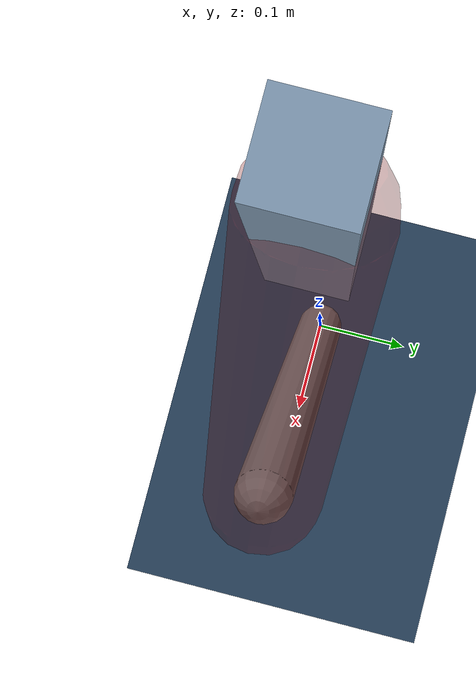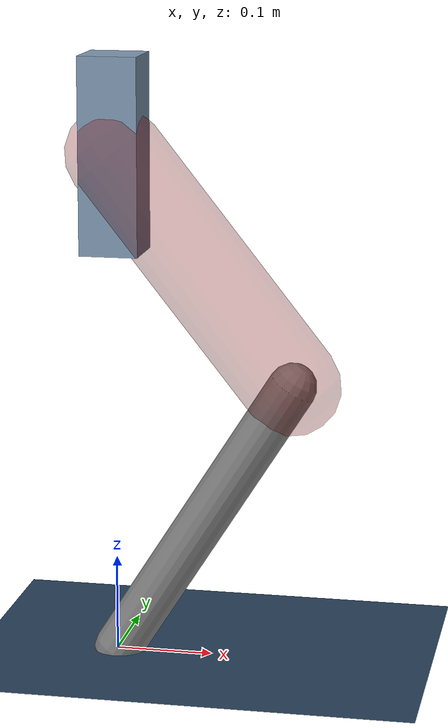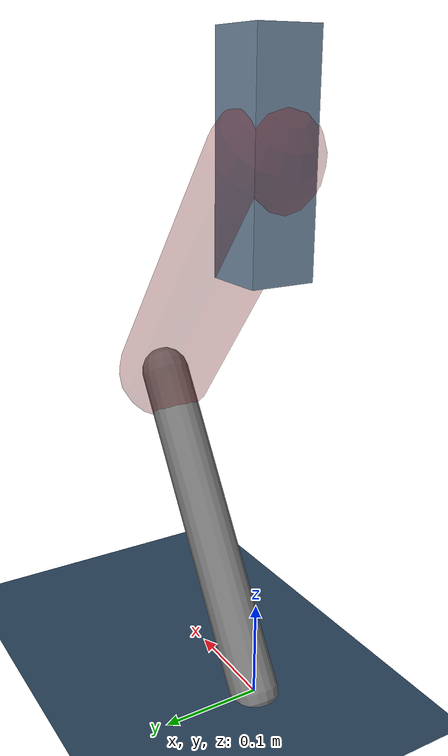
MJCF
<mujoco model="Hopper2D">
	<compiler inertiafromgeom="true" angle="radian" />
	<option timestep="0.001" integrator="implicit" cone="elliptic" solver="Newton" tolerance="1e-10" />

	<default>
		<geom contype="1" conaffinity="1" condim="3" friction="2 0.005 0.0001" solref="0.005 1" />
		<joint limited="true" damping="0.1" />
	</default>

	<asset>
		<texture name="skybox" type="skybox" builtin="gradient" rgb1=".4 .6 .8" rgb2="0 0 0" width="800" height="800" />
		<texture name="grid" type="2d" builtin="checker" rgb1=".1 .2 .3" rgb2=".2 .3 .4" width="300" height="300" mark="edge" markrgb=".2 .3 .4" />
		<material name="ground" texture="grid" texrepeat="1 1" texuniform="true" reflectance="0.1" />
		<material name="leg" rgba="0.5 0.6 0.7 1" />
	</asset>

	<worldbody>

		<geom name="floor" type="plane" size="5 5 0.25" material="ground" />

		<light directional="false" diffuse="0.8 0.8 0.8" specular="0.3 0.3 0.3" pos="0 0 2" dir="0 0 -1" />
		<light mode="targetbodycom" target="base" directional="false" diffuse="0.8 0.8 0.8" specular="0.3 0.3 0.3" pos="0 0 2" dir="0 0 -1" />

		<camera name="fixed" pos="0 -2 1" xyaxes="1 0 0 0 0 1" />
		<camera name="tracking" mode="trackcom" pos="0 -3 1" />

		<body name="root" pos="0 0 0.5236591519672246">
			<joint name="slide_x" type="slide" axis="1 0 0" range="-100 100" />
			<joint name="slide_z" type="slide" axis="0 0 1" range="0 10" />

			<body name="base" pos="0 0 0">
				<geom name="torso" type="box" size="0.03 0.03 0.1" mass="1.8840000000000001" material="leg" />

				<body name="link1" pos="0 0 0" euler="0 0.9016500838704115 0">
					<joint type="hinge" axis="0 -1 0" pos="0 0 0" name="hinge1" limited="true" range="-3.14 3.14" stiffness="0" damping="0.1" />
					<geom name="thigh" type="capsule" fromto="0 0 0 0.29584279898109334 0 0" size="0.05" rgba="0.5 0 0 0.3" mass="0.9774912773508427" />

					<body name="link2" pos="0.29584279898109334 0 0" euler="0 1.230839706393991 0">
						<joint type="hinge" axis="0 -1 0" pos="0 0 0" name="hinge2" limited="true" range="-3.14 3.14" stiffness="0" damping="0.1" />
						<geom name="shank" type="capsule" fromto="0 0 0 0.34455354651422765 0 0" size="0.025" mass="0.5195428372113822" />

					</body>
				</body>
			</body>
		</body>
	</worldbody>

	<actuator>
		<motor name="torque1" joint="hinge1" ctrlrange="-12.113775495363672 12.113775495363672" ctrllimited="true" gear="1" />
		<motor name="torque2" joint="hinge2" ctrlrange="-55.567367189849556 55.567367189849556" ctrllimited="true" gear="1" />
	</actuator>
</mujoco>
